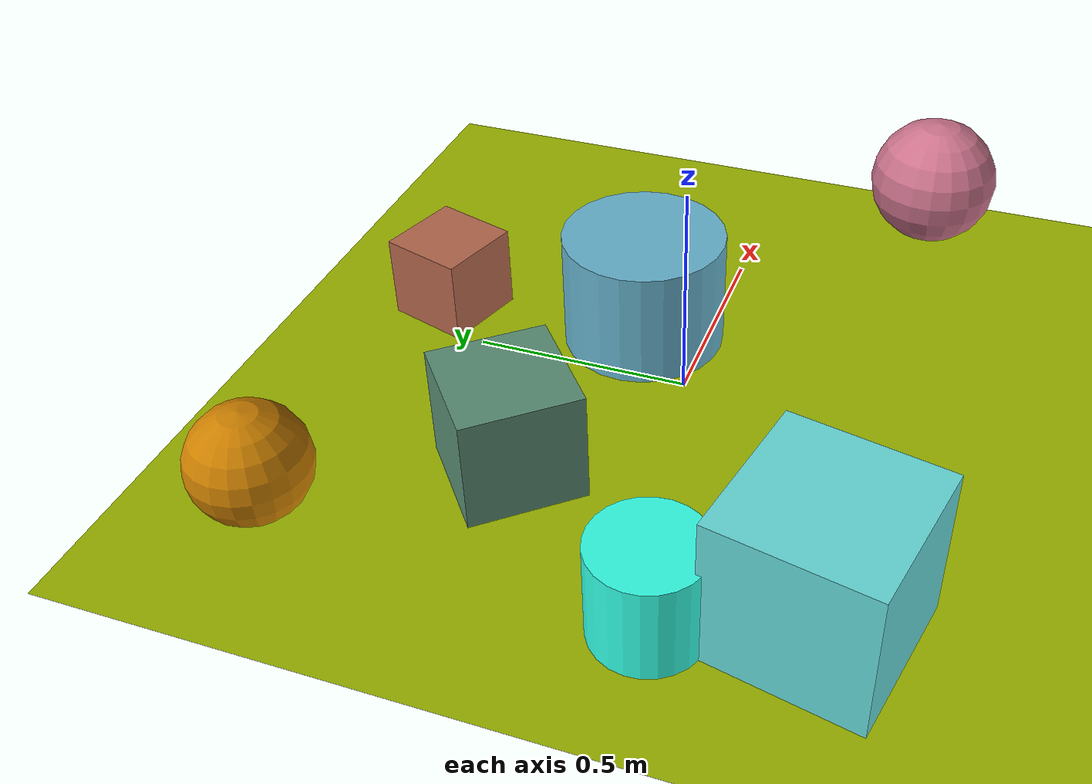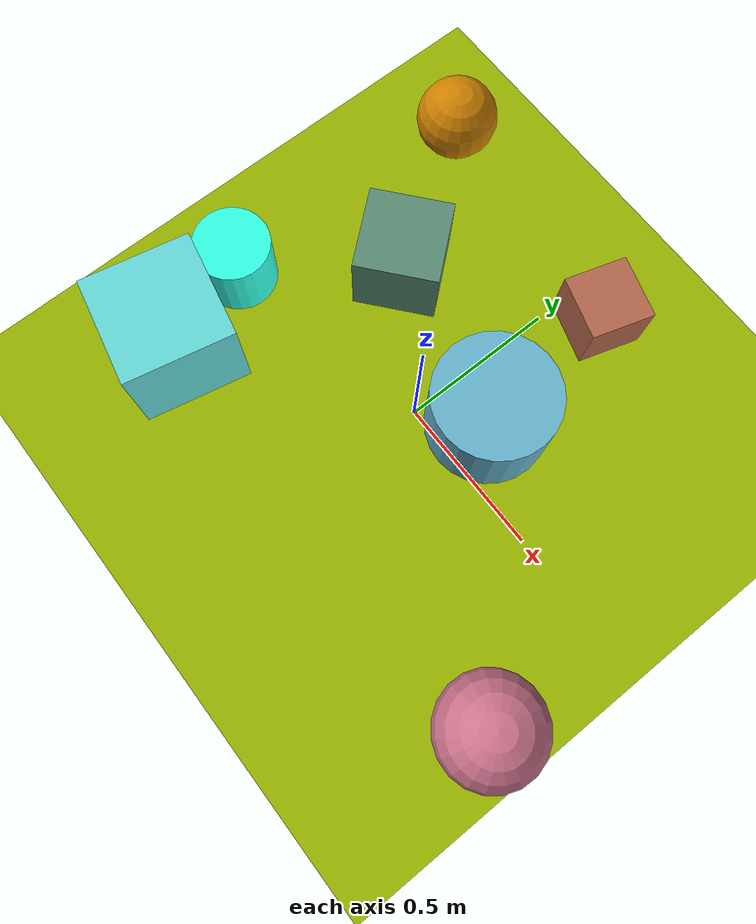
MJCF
<mujoco>
   <asset>
<texture type="skybox" builtin="gradient" rgb1="0.4 0.3 0.2" rgb2="0.3 0.0 0.5" width="256" height="256"/>
<texture name="flat_0" builtin="flat" rgb1="0.4 0.7 0.8" rgb2="0.4 0.7 0.8"  width="200" height="200"/>
<texture name="gradient_1" builtin="gradient" rgb1="0.5 0.8 0.8" rgb2="0.3 0.9 0.9" width="200" height="200"/>
<texture name="checker_2" builtin="checker" rgb1="0.6 0.9 0.3" rgb2="1.0 0.0 0.8" width="200" height="200"/>
<texture name="flat_3" builtin="flat" rgb1="0.2 1.0 0.9" rgb2="0.2 1.0 0.9"  width="200" height="200"/>
<texture name="flat_4" builtin="flat" rgb1="0.7 0.4 0.3" rgb2="0.7 0.4 0.3"  width="200" height="200"/>
<texture name="flat_5" builtin="flat" rgb1="0.8 0.5 0.0" rgb2="0.8 0.5 0.0"  width="200" height="200"/>
<texture name="gradient_6" builtin="gradient" rgb1="0.0 1.0 0.8" rgb2="0.7 0.1 0.1" width="200" height="200"/><material name="flat_0_mat" reflectance="0" texture="flat_0" texuniform="true"/>
<material name="gradient_1_mat" reflectance="0" texture="gradient_1" texuniform="true"/>
<material name="checker_2_mat" reflectance="0" texrepeat="2 2" texture="checker_2" texuniform="false" />
<material name="flat_3_mat" reflectance="0" texture="flat_3" texuniform="true"/>
<material name="flat_4_mat" reflectance="0" texture="flat_4" texuniform="true"/>
<material name="flat_5_mat" reflectance="0" texture="flat_5" texuniform="true"/>
<material name="gradient_6_mat" reflectance="0" texture="gradient_6" texuniform="true"/>
   </asset>

   <worldbody>
      <light diffuse=".9 .9 .9" pos="0 0 3" dir="0 0 -1"/>
     <geom type="plane" size="1 1 0.1" rgba="0.6 0.7 0.0 1"/>
<geom type="cylinder" pos="0.16 0.15 0.14" size="0.19 0.14 0.14" material="flat_0_mat" euler="0 0 47" />
<geom type="box" pos="-0.61 -0.45 0.17" size="0.17 0.17 0.17" material="gradient_1_mat" euler="0 0 78" />
<geom type="sphere" pos="0.83 -0.42 0.16" size="0.16 0.16 0.16" material="checker_2_mat" euler="0 0 60" />
<geom type="cylinder" pos="-0.7 -0.15 0.11" size="0.12 0.11 0.11" material="flat_3_mat" euler="0 0 57" />
<geom type="box" pos="0.12 0.63 0.1" size="0.1 0.1 0.1" material="flat_4_mat" euler="0 0 73" />
<geom type="sphere" pos="-0.66 0.7 0.13" size="0.13 0.13 0.13" material="flat_5_mat" euler="0 0 35" />
<geom type="box" pos="-0.39 0.26 0.13" size="0.13 0.13 0.13" material="gradient_6_mat" euler="0 0 40" /><camera euler="60 0 180" fovy="60" name="camera1" pos="-0.2 -1.5 1"></camera>   </worldbody>
</mujoco>
